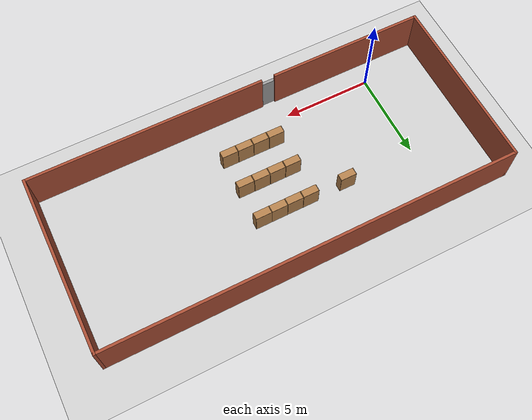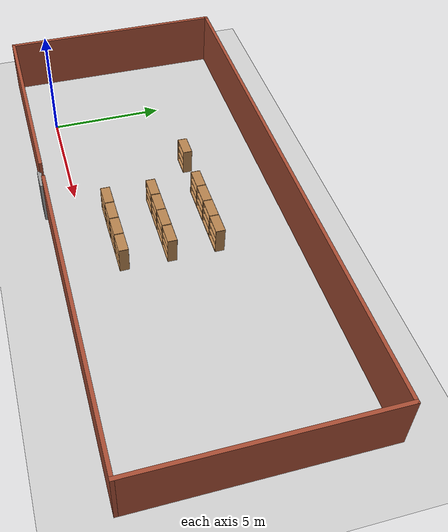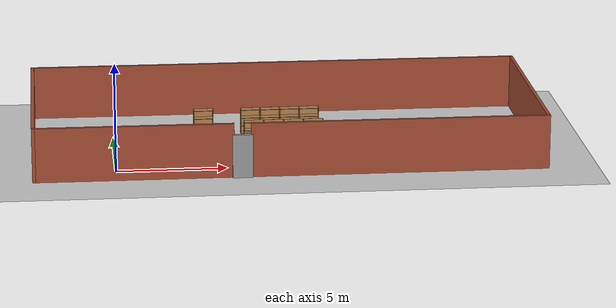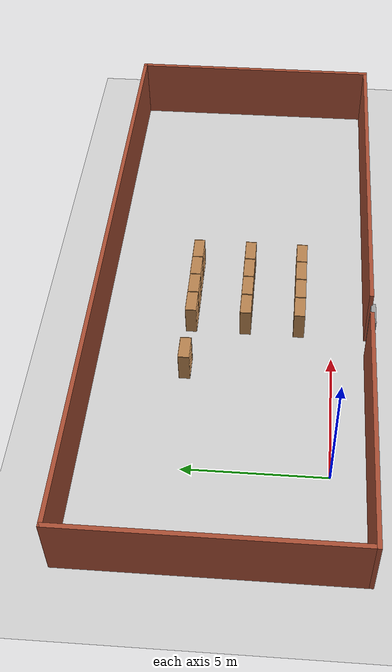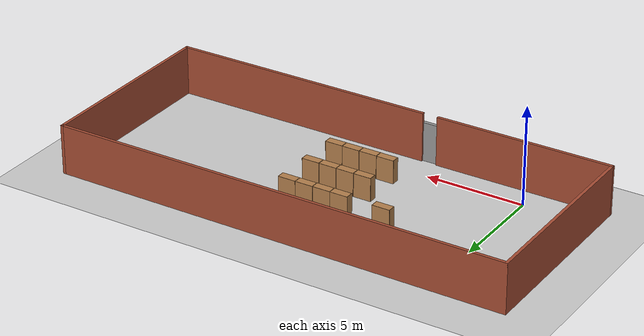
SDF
<sdf version="1.7">
 <world name="default">
  <model name="ground_plane">
   <static>1</static>
   <link name="link">
    <collision name="collision">
     <geometry><plane><normal>0 0 1</normal><size>100 100</size></plane></geometry>
     <surface>
      <contact><collide_bitmask>65535</collide_bitmask></contact>
      <friction><ode><mu>100</mu><mu2>50</mu2></ode></friction>
     </surface>
    </collision>
    <visual name="visual">
     <cast_shadows>0</cast_shadows>
     <geometry><plane><normal>0 0 1</normal><size>100 100</size></plane></geometry>
     <material>
      <script><uri>file://media/materials/scripts/gazebo.material</uri><name>Gazebo/Grey</name></script>
     </material>
    </visual>
   </link>
  </model>
  <model name="bookshelf_10">
   <static>1</static>
   <link name="link">
    <inertial><mass>1</mass></inertial>
    <collision name="back">
     <pose>0 0.005 0.6 0 -0 0</pose>
     <geometry><box><size>0.9 0.01 1.2</size></box></geometry>
    </collision>
    <visual name="visual1">
     <pose>0 0.005 0.6 0 -0 0</pose>
     <geometry><box><size>0.9 0.01 1.2</size></box></geometry>
     <material>
      <script><uri>file://media/materials/scripts/gazebo.material</uri><name>Gazebo/Wood</name></script>
     </material>
    </visual>
    <collision name="left_side">
     <pose>0.45 -0.195 0.6 0 -0 0</pose>
     <geometry><box><size>0.02 0.4 1.2</size></box></geometry>
    </collision>
    <visual name="visual2">
     <pose>0.45 -0.195 0.6 0 -0 0</pose>
     <geometry><box><size>0.02 0.4 1.2</size></box></geometry>
     <material>
      <script><uri>file://media/materials/scripts/gazebo.material</uri><name>Gazebo/Wood</name></script>
     </material>
    </visual>
    <collision name="right_side">
     <pose>-0.45 -0.195 0.6 0 -0 0</pose>
     <geometry><box><size>0.02 0.4 1.2</size></box></geometry>
    </collision>
    <visual name="visual3">
     <pose>-0.45 -0.195 0.6 0 -0 0</pose>
     <geometry><box><size>0.02 0.4 1.2</size></box></geometry>
     <material>
      <script><uri>file://media/materials/scripts/gazebo.material</uri><name>Gazebo/Wood</name></script>
     </material>
    </visual>
    <collision name="bottom">
     <pose>0 -0.195 0.03 0 -0 0</pose>
     <geometry><box><size>0.88 0.4 0.06</size></box></geometry>
    </collision>
    <visual name="visual4">
     <pose>0 -0.195 0.03 0 -0 0</pose>
     <geometry><box><size>0.88 0.4 0.06</size></box></geometry>
     <material>
      <script><uri>file://media/materials/scripts/gazebo.material</uri><name>Gazebo/Wood</name></script>
     </material>
    </visual>
    <collision name="top">
     <pose>0 -0.195 1.19 0 -0 0</pose>
     <geometry><box><size>0.88 0.4 0.02</size></box></geometry>
    </collision>
    <visual name="visual5">
     <pose>0 -0.195 1.19 0 -0 0</pose>
     <geometry><box><size>0.88 0.4 0.02</size></box></geometry>
     <material>
      <script><uri>file://media/materials/scripts/gazebo.material</uri><name>Gazebo/Wood</name></script>
     </material>
    </visual>
    <collision name="low_shelf">
     <pose>0 -0.195 0.43 0 -0 0</pose>
     <geometry><box><size>0.88 0.4 0.02</size></box></geometry>
    </collision>
    <visual name="visual6">
     <pose>0 -0.195 0.43 0 -0 0</pose>
     <geometry><box><size>0.88 0.4 0.02</size></box></geometry>
     <material>
      <script><uri>file://media/materials/scripts/gazebo.material</uri><name>Gazebo/Wood</name></script>
     </material>
    </visual>
    <collision name="high_shelf">
     <pose>0 -0.195 0.8 0 -0 0</pose>
     <geometry><box><size>0.88 0.4 0.02</size></box></geometry>
    </collision>
    <visual name="visual7">
     <pose>0 -0.195 0.8 0 -0 0</pose>
     <geometry><box><size>0.88 0.4 0.02</size></box></geometry>
     <material>
      <script><uri>file://media/materials/scripts/gazebo.material</uri><name>Gazebo/Wood</name></script>
     </material>
    </visual>
   </link>
   <pose>4.24822 5.43713 0 0 -0 0</pose>
  </model>
  <model name="bookshelf_11">
   <static>1</static>
   <link name="link">
    <inertial><mass>1</mass></inertial>
    <collision name="back">
     <pose>0 0.005 0.6 0 -0 0</pose>
     <geometry><box><size>0.9 0.01 1.2</size></box></geometry>
    </collision>
    <visual name="visual1">
     <pose>0 0.005 0.6 0 -0 0</pose>
     <geometry><box><size>0.9 0.01 1.2</size></box></geometry>
     <material>
      <script><uri>file://media/materials/scripts/gazebo.material</uri><name>Gazebo/Wood</name></script>
     </material>
    </visual>
    <collision name="left_side">
     <pose>0.45 -0.195 0.6 0 -0 0</pose>
     <geometry><box><size>0.02 0.4 1.2</size></box></geometry>
    </collision>
    <visual name="visual2">
     <pose>0.45 -0.195 0.6 0 -0 0</pose>
     <geometry><box><size>0.02 0.4 1.2</size></box></geometry>
     <material>
      <script><uri>file://media/materials/scripts/gazebo.material</uri><name>Gazebo/Wood</name></script>
     </material>
    </visual>
    <collision name="right_side">
     <pose>-0.45 -0.195 0.6 0 -0 0</pose>
     <geometry><box><size>0.02 0.4 1.2</size></box></geometry>
    </collision>
    <visual name="visual3">
     <pose>-0.45 -0.195 0.6 0 -0 0</pose>
     <geometry><box><size>0.02 0.4 1.2</size></box></geometry>
     <material>
      <script><uri>file://media/materials/scripts/gazebo.material</uri><name>Gazebo/Wood</name></script>
     </material>
    </visual>
    <collision name="bottom">
     <pose>0 -0.195 0.03 0 -0 0</pose>
     <geometry><box><size>0.88 0.4 0.06</size></box></geometry>
    </collision>
    <visual name="visual4">
     <pose>0 -0.195 0.03 0 -0 0</pose>
     <geometry><box><size>0.88 0.4 0.06</size></box></geometry>
     <material>
      <script><uri>file://media/materials/scripts/gazebo.material</uri><name>Gazebo/Wood</name></script>
     </material>
    </visual>
    <collision name="top">
     <pose>0 -0.195 1.19 0 -0 0</pose>
     <geometry><box><size>0.88 0.4 0.02</size></box></geometry>
    </collision>
    <visual name="visual5">
     <pose>0 -0.195 1.19 0 -0 0</pose>
     <geometry><box><size>0.88 0.4 0.02</size></box></geometry>
     <material>
      <script><uri>file://media/materials/scripts/gazebo.material</uri><name>Gazebo/Wood</name></script>
     </material>
    </visual>
    <collision name="low_shelf">
     <pose>0 -0.195 0.43 0 -0 0</pose>
     <geometry><box><size>0.88 0.4 0.02</size></box></geometry>
    </collision>
    <visual name="visual6">
     <pose>0 -0.195 0.43 0 -0 0</pose>
     <geometry><box><size>0.88 0.4 0.02</size></box></geometry>
     <material>
      <script><uri>file://media/materials/scripts/gazebo.material</uri><name>Gazebo/Wood</name></script>
     </material>
    </visual>
    <collision name="high_shelf">
     <pose>0 -0.195 0.8 0 -0 0</pose>
     <geometry><box><size>0.88 0.4 0.02</size></box></geometry>
    </collision>
    <visual name="visual7">
     <pose>0 -0.195 0.8 0 -0 0</pose>
     <geometry><box><size>0.88 0.4 0.02</size></box></geometry>
     <material>
      <script><uri>file://media/materials/scripts/gazebo.material</uri><name>Gazebo/Wood</name></script>
     </material>
    </visual>
   </link>
   <pose>6.45841 5.41018 0 0 -0 0</pose>
  </model>
  <model name="bookshelf_12">
   <static>1</static>
   <link name="link">
    <inertial><mass>1</mass></inertial>
    <collision name="back">
     <pose>0 0.005 0.6 0 -0 0</pose>
     <geometry><box><size>0.9 0.01 1.2</size></box></geometry>
    </collision>
    <visual name="visual1">
     <pose>0 0.005 0.6 0 -0 0</pose>
     <geometry><box><size>0.9 0.01 1.2</size></box></geometry>
     <material>
      <script><uri>file://media/materials/scripts/gazebo.material</uri><name>Gazebo/Wood</name></script>
     </material>
    </visual>
    <collision name="left_side">
     <pose>0.45 -0.195 0.6 0 -0 0</pose>
     <geometry><box><size>0.02 0.4 1.2</size></box></geometry>
    </collision>
    <visual name="visual2">
     <pose>0.45 -0.195 0.6 0 -0 0</pose>
     <geometry><box><size>0.02 0.4 1.2</size></box></geometry>
     <material>
      <script><uri>file://media/materials/scripts/gazebo.material</uri><name>Gazebo/Wood</name></script>
     </material>
    </visual>
    <collision name="right_side">
     <pose>-0.45 -0.195 0.6 0 -0 0</pose>
     <geometry><box><size>0.02 0.4 1.2</size></box></geometry>
    </collision>
    <visual name="visual3">
     <pose>-0.45 -0.195 0.6 0 -0 0</pose>
     <geometry><box><size>0.02 0.4 1.2</size></box></geometry>
     <material>
      <script><uri>file://media/materials/scripts/gazebo.material</uri><name>Gazebo/Wood</name></script>
     </material>
    </visual>
    <collision name="bottom">
     <pose>0 -0.195 0.03 0 -0 0</pose>
     <geometry><box><size>0.88 0.4 0.06</size></box></geometry>
    </collision>
    <visual name="visual4">
     <pose>0 -0.195 0.03 0 -0 0</pose>
     <geometry><box><size>0.88 0.4 0.06</size></box></geometry>
     <material>
      <script><uri>file://media/materials/scripts/gazebo.material</uri><name>Gazebo/Wood</name></script>
     </material>
    </visual>
    <collision name="top">
     <pose>0 -0.195 1.19 0 -0 0</pose>
     <geometry><box><size>0.88 0.4 0.02</size></box></geometry>
    </collision>
    <visual name="visual5">
     <pose>0 -0.195 1.19 0 -0 0</pose>
     <geometry><box><size>0.88 0.4 0.02</size></box></geometry>
     <material>
      <script><uri>file://media/materials/scripts/gazebo.material</uri><name>Gazebo/Wood</name></script>
     </material>
    </visual>
    <collision name="low_shelf">
     <pose>0 -0.195 0.43 0 -0 0</pose>
     <geometry><box><size>0.88 0.4 0.02</size></box></geometry>
    </collision>
    <visual name="visual6">
     <pose>0 -0.195 0.43 0 -0 0</pose>
     <geometry><box><size>0.88 0.4 0.02</size></box></geometry>
     <material>
      <script><uri>file://media/materials/scripts/gazebo.material</uri><name>Gazebo/Wood</name></script>
     </material>
    </visual>
    <collision name="high_shelf">
     <pose>0 -0.195 0.8 0 -0 0</pose>
     <geometry><box><size>0.88 0.4 0.02</size></box></geometry>
    </collision>
    <visual name="visual7">
     <pose>0 -0.195 0.8 0 -0 0</pose>
     <geometry><box><size>0.88 0.4 0.02</size></box></geometry>
     <material>
      <script><uri>file://media/materials/scripts/gazebo.material</uri><name>Gazebo/Wood</name></script>
     </material>
    </visual>
   </link>
   <pose>6.46154 3.39615 0 0 -0 0</pose>
  </model>
  <model name="bookshelf_13">
   <static>1</static>
   <link name="link">
    <inertial><mass>1</mass></inertial>
    <collision name="back">
     <pose>0 0.005 0.6 0 -0 0</pose>
     <geometry><box><size>0.9 0.01 1.2</size></box></geometry>
    </collision>
    <visual name="visual1">
     <pose>0 0.005 0.6 0 -0 0</pose>
     <geometry><box><size>0.9 0.01 1.2</size></box></geometry>
     <material>
      <script><uri>file://media/materials/scripts/gazebo.material</uri><name>Gazebo/Wood</name></script>
     </material>
    </visual>
    <collision name="left_side">
     <pose>0.45 -0.195 0.6 0 -0 0</pose>
     <geometry><box><size>0.02 0.4 1.2</size></box></geometry>
    </collision>
    <visual name="visual2">
     <pose>0.45 -0.195 0.6 0 -0 0</pose>
     <geometry><box><size>0.02 0.4 1.2</size></box></geometry>
     <material>
      <script><uri>file://media/materials/scripts/gazebo.material</uri><name>Gazebo/Wood</name></script>
     </material>
    </visual>
    <collision name="right_side">
     <pose>-0.45 -0.195 0.6 0 -0 0</pose>
     <geometry><box><size>0.02 0.4 1.2</size></box></geometry>
    </collision>
    <visual name="visual3">
     <pose>-0.45 -0.195 0.6 0 -0 0</pose>
     <geometry><box><size>0.02 0.4 1.2</size></box></geometry>
     <material>
      <script><uri>file://media/materials/scripts/gazebo.material</uri><name>Gazebo/Wood</name></script>
     </material>
    </visual>
    <collision name="bottom">
     <pose>0 -0.195 0.03 0 -0 0</pose>
     <geometry><box><size>0.88 0.4 0.06</size></box></geometry>
    </collision>
    <visual name="visual4">
     <pose>0 -0.195 0.03 0 -0 0</pose>
     <geometry><box><size>0.88 0.4 0.06</size></box></geometry>
     <material>
      <script><uri>file://media/materials/scripts/gazebo.material</uri><name>Gazebo/Wood</name></script>
     </material>
    </visual>
    <collision name="top">
     <pose>0 -0.195 1.19 0 -0 0</pose>
     <geometry><box><size>0.88 0.4 0.02</size></box></geometry>
    </collision>
    <visual name="visual5">
     <pose>0 -0.195 1.19 0 -0 0</pose>
     <geometry><box><size>0.88 0.4 0.02</size></box></geometry>
     <material>
      <script><uri>file://media/materials/scripts/gazebo.material</uri><name>Gazebo/Wood</name></script>
     </material>
    </visual>
    <collision name="low_shelf">
     <pose>0 -0.195 0.43 0 -0 0</pose>
     <geometry><box><size>0.88 0.4 0.02</size></box></geometry>
    </collision>
    <visual name="visual6">
     <pose>0 -0.195 0.43 0 -0 0</pose>
     <geometry><box><size>0.88 0.4 0.02</size></box></geometry>
     <material>
      <script><uri>file://media/materials/scripts/gazebo.material</uri><name>Gazebo/Wood</name></script>
     </material>
    </visual>
    <collision name="high_shelf">
     <pose>0 -0.195 0.8 0 -0 0</pose>
     <geometry><box><size>0.88 0.4 0.02</size></box></geometry>
    </collision>
    <visual name="visual7">
     <pose>0 -0.195 0.8 0 -0 0</pose>
     <geometry><box><size>0.88 0.4 0.02</size></box></geometry>
     <material>
      <script><uri>file://media/materials/scripts/gazebo.material</uri><name>Gazebo/Wood</name></script>
     </material>
    </visual>
   </link>
   <pose>6.44421 1.41365 0 0 -0 0</pose>
  </model>
  <model name="bookshelf_14">
   <static>1</static>
   <link name="link">
    <inertial><mass>1</mass></inertial>
    <collision name="back">
     <pose>0 0.005 0.6 0 -0 0</pose>
     <geometry><box><size>0.9 0.01 1.2</size></box></geometry>
    </collision>
    <visual name="visual1">
     <pose>0 0.005 0.6 0 -0 0</pose>
     <geometry><box><size>0.9 0.01 1.2</size></box></geometry>
     <material>
      <script><uri>file://media/materials/scripts/gazebo.material</uri><name>Gazebo/Wood</name></script>
     </material>
    </visual>
    <collision name="left_side">
     <pose>0.45 -0.195 0.6 0 -0 0</pose>
     <geometry><box><size>0.02 0.4 1.2</size></box></geometry>
    </collision>
    <visual name="visual2">
     <pose>0.45 -0.195 0.6 0 -0 0</pose>
     <geometry><box><size>0.02 0.4 1.2</size></box></geometry>
     <material>
      <script><uri>file://media/materials/scripts/gazebo.material</uri><name>Gazebo/Wood</name></script>
     </material>
    </visual>
    <collision name="right_side">
     <pose>-0.45 -0.195 0.6 0 -0 0</pose>
     <geometry><box><size>0.02 0.4 1.2</size></box></geometry>
    </collision>
    <visual name="visual3">
     <pose>-0.45 -0.195 0.6 0 -0 0</pose>
     <geometry><box><size>0.02 0.4 1.2</size></box></geometry>
     <material>
      <script><uri>file://media/materials/scripts/gazebo.material</uri><name>Gazebo/Wood</name></script>
     </material>
    </visual>
    <collision name="bottom">
     <pose>0 -0.195 0.03 0 -0 0</pose>
     <geometry><box><size>0.88 0.4 0.06</size></box></geometry>
    </collision>
    <visual name="visual4">
     <pose>0 -0.195 0.03 0 -0 0</pose>
     <geometry><box><size>0.88 0.4 0.06</size></box></geometry>
     <material>
      <script><uri>file://media/materials/scripts/gazebo.material</uri><name>Gazebo/Wood</name></script>
     </material>
    </visual>
    <collision name="top">
     <pose>0 -0.195 1.19 0 -0 0</pose>
     <geometry><box><size>0.88 0.4 0.02</size></box></geometry>
    </collision>
    <visual name="visual5">
     <pose>0 -0.195 1.19 0 -0 0</pose>
     <geometry><box><size>0.88 0.4 0.02</size></box></geometry>
     <material>
      <script><uri>file://media/materials/scripts/gazebo.material</uri><name>Gazebo/Wood</name></script>
     </material>
    </visual>
    <collision name="low_shelf">
     <pose>0 -0.195 0.43 0 -0 0</pose>
     <geometry><box><size>0.88 0.4 0.02</size></box></geometry>
    </collision>
    <visual name="visual6">
     <pose>0 -0.195 0.43 0 -0 0</pose>
     <geometry><box><size>0.88 0.4 0.02</size></box></geometry>
     <material>
      <script><uri>file://media/materials/scripts/gazebo.material</uri><name>Gazebo/Wood</name></script>
     </material>
    </visual>
    <collision name="high_shelf">
     <pose>0 -0.195 0.8 0 -0 0</pose>
     <geometry><box><size>0.88 0.4 0.02</size></box></geometry>
    </collision>
    <visual name="visual7">
     <pose>0 -0.195 0.8 0 -0 0</pose>
     <geometry><box><size>0.88 0.4 0.02</size></box></geometry>
     <material>
      <script><uri>file://media/materials/scripts/gazebo.material</uri><name>Gazebo/Wood</name></script>
     </material>
    </visual>
   </link>
   <pose>7.38076 5.40908 0 0 -0 0</pose>
  </model>
  <model name="bookshelf_15">
   <static>1</static>
   <link name="link">
    <inertial><mass>1</mass></inertial>
    <collision name="back">
     <pose>0 0.005 0.6 0 -0 0</pose>
     <geometry><box><size>0.9 0.01 1.2</size></box></geometry>
    </collision>
    <visual name="visual1">
     <pose>0 0.005 0.6 0 -0 0</pose>
     <geometry><box><size>0.9 0.01 1.2</size></box></geometry>
     <material>
      <script><uri>file://media/materials/scripts/gazebo.material</uri><name>Gazebo/Wood</name></script>
     </material>
    </visual>
    <collision name="left_side">
     <pose>0.45 -0.195 0.6 0 -0 0</pose>
     <geometry><box><size>0.02 0.4 1.2</size></box></geometry>
    </collision>
    <visual name="visual2">
     <pose>0.45 -0.195 0.6 0 -0 0</pose>
     <geometry><box><size>0.02 0.4 1.2</size></box></geometry>
     <material>
      <script><uri>file://media/materials/scripts/gazebo.material</uri><name>Gazebo/Wood</name></script>
     </material>
    </visual>
    <collision name="right_side">
     <pose>-0.45 -0.195 0.6 0 -0 0</pose>
     <geometry><box><size>0.02 0.4 1.2</size></box></geometry>
    </collision>
    <visual name="visual3">
     <pose>-0.45 -0.195 0.6 0 -0 0</pose>
     <geometry><box><size>0.02 0.4 1.2</size></box></geometry>
     <material>
      <script><uri>file://media/materials/scripts/gazebo.material</uri><name>Gazebo/Wood</name></script>
     </material>
    </visual>
    <collision name="bottom">
     <pose>0 -0.195 0.03 0 -0 0</pose>
     <geometry><box><size>0.88 0.4 0.06</size></box></geometry>
    </collision>
    <visual name="visual4">
     <pose>0 -0.195 0.03 0 -0 0</pose>
     <geometry><box><size>0.88 0.4 0.06</size></box></geometry>
     <material>
      <script><uri>file://media/materials/scripts/gazebo.material</uri><name>Gazebo/Wood</name></script>
     </material>
    </visual>
    <collision name="top">
     <pose>0 -0.195 1.19 0 -0 0</pose>
     <geometry><box><size>0.88 0.4 0.02</size></box></geometry>
    </collision>
    <visual name="visual5">
     <pose>0 -0.195 1.19 0 -0 0</pose>
     <geometry><box><size>0.88 0.4 0.02</size></box></geometry>
     <material>
      <script><uri>file://media/materials/scripts/gazebo.material</uri><name>Gazebo/Wood</name></script>
     </material>
    </visual>
    <collision name="low_shelf">
     <pose>0 -0.195 0.43 0 -0 0</pose>
     <geometry><box><size>0.88 0.4 0.02</size></box></geometry>
    </collision>
    <visual name="visual6">
     <pose>0 -0.195 0.43 0 -0 0</pose>
     <geometry><box><size>0.88 0.4 0.02</size></box></geometry>
     <material>
      <script><uri>file://media/materials/scripts/gazebo.material</uri><name>Gazebo/Wood</name></script>
     </material>
    </visual>
    <collision name="high_shelf">
     <pose>0 -0.195 0.8 0 -0 0</pose>
     <geometry><box><size>0.88 0.4 0.02</size></box></geometry>
    </collision>
    <visual name="visual7">
     <pose>0 -0.195 0.8 0 -0 0</pose>
     <geometry><box><size>0.88 0.4 0.02</size></box></geometry>
     <material>
      <script><uri>file://media/materials/scripts/gazebo.material</uri><name>Gazebo/Wood</name></script>
     </material>
    </visual>
   </link>
   <pose>7.38849 3.39527 0 0 -0 0</pose>
  </model>
  <model name="bookshelf_16">
   <static>1</static>
   <link name="link">
    <inertial><mass>1</mass></inertial>
    <collision name="back">
     <pose>0 0.005 0.6 0 -0 0</pose>
     <geometry><box><size>0.9 0.01 1.2</size></box></geometry>
    </collision>
    <visual name="visual1">
     <pose>0 0.005 0.6 0 -0 0</pose>
     <geometry><box><size>0.9 0.01 1.2</size></box></geometry>
     <material>
      <script><uri>file://media/materials/scripts/gazebo.material</uri><name>Gazebo/Wood</name></script>
     </material>
    </visual>
    <collision name="left_side">
     <pose>0.45 -0.195 0.6 0 -0 0</pose>
     <geometry><box><size>0.02 0.4 1.2</size></box></geometry>
    </collision>
    <visual name="visual2">
     <pose>0.45 -0.195 0.6 0 -0 0</pose>
     <geometry><box><size>0.02 0.4 1.2</size></box></geometry>
     <material>
      <script><uri>file://media/materials/scripts/gazebo.material</uri><name>Gazebo/Wood</name></script>
     </material>
    </visual>
    <collision name="right_side">
     <pose>-0.45 -0.195 0.6 0 -0 0</pose>
     <geometry><box><size>0.02 0.4 1.2</size></box></geometry>
    </collision>
    <visual name="visual3">
     <pose>-0.45 -0.195 0.6 0 -0 0</pose>
     <geometry><box><size>0.02 0.4 1.2</size></box></geometry>
     <material>
      <script><uri>file://media/materials/scripts/gazebo.material</uri><name>Gazebo/Wood</name></script>
     </material>
    </visual>
    <collision name="bottom">
     <pose>0 -0.195 0.03 0 -0 0</pose>
     <geometry><box><size>0.88 0.4 0.06</size></box></geometry>
    </collision>
    <visual name="visual4">
     <pose>0 -0.195 0.03 0 -0 0</pose>
     <geometry><box><size>0.88 0.4 0.06</size></box></geometry>
     <material>
      <script><uri>file://media/materials/scripts/gazebo.material</uri><name>Gazebo/Wood</name></script>
     </material>
    </visual>
    <collision name="top">
     <pose>0 -0.195 1.19 0 -0 0</pose>
     <geometry><box><size>0.88 0.4 0.02</size></box></geometry>
    </collision>
    <visual name="visual5">
     <pose>0 -0.195 1.19 0 -0 0</pose>
     <geometry><box><size>0.88 0.4 0.02</size></box></geometry>
     <material>
      <script><uri>file://media/materials/scripts/gazebo.material</uri><name>Gazebo/Wood</name></script>
     </material>
    </visual>
    <collision name="low_shelf">
     <pose>0 -0.195 0.43 0 -0 0</pose>
     <geometry><box><size>0.88 0.4 0.02</size></box></geometry>
    </collision>
    <visual name="visual6">
     <pose>0 -0.195 0.43 0 -0 0</pose>
     <geometry><box><size>0.88 0.4 0.02</size></box></geometry>
     <material>
      <script><uri>file://media/materials/scripts/gazebo.material</uri><name>Gazebo/Wood</name></script>
     </material>
    </visual>
    <collision name="high_shelf">
     <pose>0 -0.195 0.8 0 -0 0</pose>
     <geometry><box><size>0.88 0.4 0.02</size></box></geometry>
    </collision>
    <visual name="visual7">
     <pose>0 -0.195 0.8 0 -0 0</pose>
     <geometry><box><size>0.88 0.4 0.02</size></box></geometry>
     <material>
      <script><uri>file://media/materials/scripts/gazebo.material</uri><name>Gazebo/Wood</name></script>
     </material>
    </visual>
   </link>
   <pose>7.36943 1.40695 0 0 -0 0</pose>
  </model>
  <model name="bookshelf_17">
   <static>1</static>
   <link name="link">
    <inertial><mass>1</mass></inertial>
    <collision name="back">
     <pose>0 0.005 0.6 0 -0 0</pose>
     <geometry><box><size>0.9 0.01 1.2</size></box></geometry>
    </collision>
    <visual name="visual1">
     <pose>0 0.005 0.6 0 -0 0</pose>
     <geometry><box><size>0.9 0.01 1.2</size></box></geometry>
     <material>
      <script><uri>file://media/materials/scripts/gazebo.material</uri><name>Gazebo/Wood</name></script>
     </material>
    </visual>
    <collision name="left_side">
     <pose>0.45 -0.195 0.6 0 -0 0</pose>
     <geometry><box><size>0.02 0.4 1.2</size></box></geometry>
    </collision>
    <visual name="visual2">
     <pose>0.45 -0.195 0.6 0 -0 0</pose>
     <geometry><box><size>0.02 0.4 1.2</size></box></geometry>
     <material>
      <script><uri>file://media/materials/scripts/gazebo.material</uri><name>Gazebo/Wood</name></script>
     </material>
    </visual>
    <collision name="right_side">
     <pose>-0.45 -0.195 0.6 0 -0 0</pose>
     <geometry><box><size>0.02 0.4 1.2</size></box></geometry>
    </collision>
    <visual name="visual3">
     <pose>-0.45 -0.195 0.6 0 -0 0</pose>
     <geometry><box><size>0.02 0.4 1.2</size></box></geometry>
     <material>
      <script><uri>file://media/materials/scripts/gazebo.material</uri><name>Gazebo/Wood</name></script>
     </material>
    </visual>
    <collision name="bottom">
     <pose>0 -0.195 0.03 0 -0 0</pose>
     <geometry><box><size>0.88 0.4 0.06</size></box></geometry>
    </collision>
    <visual name="visual4">
     <pose>0 -0.195 0.03 0 -0 0</pose>
     <geometry><box><size>0.88 0.4 0.06</size></box></geometry>
     <material>
      <script><uri>file://media/materials/scripts/gazebo.material</uri><name>Gazebo/Wood</name></script>
     </material>
    </visual>
    <collision name="top">
     <pose>0 -0.195 1.19 0 -0 0</pose>
     <geometry><box><size>0.88 0.4 0.02</size></box></geometry>
    </collision>
    <visual name="visual5">
     <pose>0 -0.195 1.19 0 -0 0</pose>
     <geometry><box><size>0.88 0.4 0.02</size></box></geometry>
     <material>
      <script><uri>file://media/materials/scripts/gazebo.material</uri><name>Gazebo/Wood</name></script>
     </material>
    </visual>
    <collision name="low_shelf">
     <pose>0 -0.195 0.43 0 -0 0</pose>
     <geometry><box><size>0.88 0.4 0.02</size></box></geometry>
    </collision>
    <visual name="visual6">
     <pose>0 -0.195 0.43 0 -0 0</pose>
     <geometry><box><size>0.88 0.4 0.02</size></box></geometry>
     <material>
      <script><uri>file://media/materials/scripts/gazebo.material</uri><name>Gazebo/Wood</name></script>
     </material>
    </visual>
    <collision name="high_shelf">
     <pose>0 -0.195 0.8 0 -0 0</pose>
     <geometry><box><size>0.88 0.4 0.02</size></box></geometry>
    </collision>
    <visual name="visual7">
     <pose>0 -0.195 0.8 0 -0 0</pose>
     <geometry><box><size>0.88 0.4 0.02</size></box></geometry>
     <material>
      <script><uri>file://media/materials/scripts/gazebo.material</uri><name>Gazebo/Wood</name></script>
     </material>
    </visual>
   </link>
   <pose>8.2985 5.41345 0 0 -0 0</pose>
  </model>
  <model name="bookshelf_18">
   <static>1</static>
   <link name="link">
    <inertial><mass>1</mass></inertial>
    <collision name="back">
     <pose>0 0.005 0.6 0 -0 0</pose>
     <geometry><box><size>0.9 0.01 1.2</size></box></geometry>
    </collision>
    <visual name="visual1">
     <pose>0 0.005 0.6 0 -0 0</pose>
     <geometry><box><size>0.9 0.01 1.2</size></box></geometry>
     <material>
      <script><uri>file://media/materials/scripts/gazebo.material</uri><name>Gazebo/Wood</name></script>
     </material>
    </visual>
    <collision name="left_side">
     <pose>0.45 -0.195 0.6 0 -0 0</pose>
     <geometry><box><size>0.02 0.4 1.2</size></box></geometry>
    </collision>
    <visual name="visual2">
     <pose>0.45 -0.195 0.6 0 -0 0</pose>
     <geometry><box><size>0.02 0.4 1.2</size></box></geometry>
     <material>
      <script><uri>file://media/materials/scripts/gazebo.material</uri><name>Gazebo/Wood</name></script>
     </material>
    </visual>
    <collision name="right_side">
     <pose>-0.45 -0.195 0.6 0 -0 0</pose>
     <geometry><box><size>0.02 0.4 1.2</size></box></geometry>
    </collision>
    <visual name="visual3">
     <pose>-0.45 -0.195 0.6 0 -0 0</pose>
     <geometry><box><size>0.02 0.4 1.2</size></box></geometry>
     <material>
      <script><uri>file://media/materials/scripts/gazebo.material</uri><name>Gazebo/Wood</name></script>
     </material>
    </visual>
    <collision name="bottom">
     <pose>0 -0.195 0.03 0 -0 0</pose>
     <geometry><box><size>0.88 0.4 0.06</size></box></geometry>
    </collision>
    <visual name="visual4">
     <pose>0 -0.195 0.03 0 -0 0</pose>
     <geometry><box><size>0.88 0.4 0.06</size></box></geometry>
     <material>
      <script><uri>file://media/materials/scripts/gazebo.material</uri><name>Gazebo/Wood</name></script>
     </material>
    </visual>
    <collision name="top">
     <pose>0 -0.195 1.19 0 -0 0</pose>
     <geometry><box><size>0.88 0.4 0.02</size></box></geometry>
    </collision>
    <visual name="visual5">
     <pose>0 -0.195 1.19 0 -0 0</pose>
     <geometry><box><size>0.88 0.4 0.02</size></box></geometry>
     <material>
      <script><uri>file://media/materials/scripts/gazebo.material</uri><name>Gazebo/Wood</name></script>
     </material>
    </visual>
    <collision name="low_shelf">
     <pose>0 -0.195 0.43 0 -0 0</pose>
     <geometry><box><size>0.88 0.4 0.02</size></box></geometry>
    </collision>
    <visual name="visual6">
     <pose>0 -0.195 0.43 0 -0 0</pose>
     <geometry><box><size>0.88 0.4 0.02</size></box></geometry>
     <material>
      <script><uri>file://media/materials/scripts/gazebo.material</uri><name>Gazebo/Wood</name></script>
     </material>
    </visual>
    <collision name="high_shelf">
     <pose>0 -0.195 0.8 0 -0 0</pose>
     <geometry><box><size>0.88 0.4 0.02</size></box></geometry>
    </collision>
    <visual name="visual7">
     <pose>0 -0.195 0.8 0 -0 0</pose>
     <geometry><box><size>0.88 0.4 0.02</size></box></geometry>
     <material>
      <script><uri>file://media/materials/scripts/gazebo.material</uri><name>Gazebo/Wood</name></script>
     </material>
    </visual>
   </link>
   <pose>8.30885 3.39913 0 0 -0 0</pose>
  </model>
  <model name="bookshelf_19">
   <static>1</static>
   <link name="link">
    <inertial><mass>1</mass></inertial>
    <collision name="back">
     <pose>0 0.005 0.6 0 -0 0</pose>
     <geometry><box><size>0.9 0.01 1.2</size></box></geometry>
    </collision>
    <visual name="visual1">
     <pose>0 0.005 0.6 0 -0 0</pose>
     <geometry><box><size>0.9 0.01 1.2</size></box></geometry>
     <material>
      <script><uri>file://media/materials/scripts/gazebo.material</uri><name>Gazebo/Wood</name></script>
     </material>
    </visual>
    <collision name="left_side">
     <pose>0.45 -0.195 0.6 0 -0 0</pose>
     <geometry><box><size>0.02 0.4 1.2</size></box></geometry>
    </collision>
    <visual name="visual2">
     <pose>0.45 -0.195 0.6 0 -0 0</pose>
     <geometry><box><size>0.02 0.4 1.2</size></box></geometry>
     <material>
      <script><uri>file://media/materials/scripts/gazebo.material</uri><name>Gazebo/Wood</name></script>
     </material>
    </visual>
    <collision name="right_side">
     <pose>-0.45 -0.195 0.6 0 -0 0</pose>
     <geometry><box><size>0.02 0.4 1.2</size></box></geometry>
    </collision>
    <visual name="visual3">
     <pose>-0.45 -0.195 0.6 0 -0 0</pose>
     <geometry><box><size>0.02 0.4 1.2</size></box></geometry>
     <material>
      <script><uri>file://media/materials/scripts/gazebo.material</uri><name>Gazebo/Wood</name></script>
     </material>
    </visual>
    <collision name="bottom">
     <pose>0 -0.195 0.03 0 -0 0</pose>
     <geometry><box><size>0.88 0.4 0.06</size></box></geometry>
    </collision>
    <visual name="visual4">
     <pose>0 -0.195 0.03 0 -0 0</pose>
     <geometry><box><size>0.88 0.4 0.06</size></box></geometry>
     <material>
      <script><uri>file://media/materials/scripts/gazebo.material</uri><name>Gazebo/Wood</name></script>
     </material>
    </visual>
    <collision name="top">
     <pose>0 -0.195 1.19 0 -0 0</pose>
     <geometry><box><size>0.88 0.4 0.02</size></box></geometry>
    </collision>
    <visual name="visual5">
     <pose>0 -0.195 1.19 0 -0 0</pose>
     <geometry><box><size>0.88 0.4 0.02</size></box></geometry>
     <material>
      <script><uri>file://media/materials/scripts/gazebo.material</uri><name>Gazebo/Wood</name></script>
     </material>
    </visual>
    <collision name="low_shelf">
     <pose>0 -0.195 0.43 0 -0 0</pose>
     <geometry><box><size>0.88 0.4 0.02</size></box></geometry>
    </collision>
    <visual name="visual6">
     <pose>0 -0.195 0.43 0 -0 0</pose>
     <geometry><box><size>0.88 0.4 0.02</size></box></geometry>
     <material>
      <script><uri>file://media/materials/scripts/gazebo.material</uri><name>Gazebo/Wood</name></script>
     </material>
    </visual>
    <collision name="high_shelf">
     <pose>0 -0.195 0.8 0 -0 0</pose>
     <geometry><box><size>0.88 0.4 0.02</size></box></geometry>
    </collision>
    <visual name="visual7">
     <pose>0 -0.195 0.8 0 -0 0</pose>
     <geometry><box><size>0.88 0.4 0.02</size></box></geometry>
     <material>
      <script><uri>file://media/materials/scripts/gazebo.material</uri><name>Gazebo/Wood</name></script>
     </material>
    </visual>
   </link>
   <pose>8.29376 1.40915 0 0 -0 0</pose>
  </model>
  <model name="bookshelf_20">
   <static>1</static>
   <link name="link">
    <inertial><mass>1</mass></inertial>
    <collision name="back">
     <pose>0 0.005 0.6 0 -0 0</pose>
     <geometry><box><size>0.9 0.01 1.2</size></box></geometry>
    </collision>
    <visual name="visual1">
     <pose>0 0.005 0.6 0 -0 0</pose>
     <geometry><box><size>0.9 0.01 1.2</size></box></geometry>
     <material>
      <script><uri>file://media/materials/scripts/gazebo.material</uri><name>Gazebo/Wood</name></script>
     </material>
    </visual>
    <collision name="left_side">
     <pose>0.45 -0.195 0.6 0 -0 0</pose>
     <geometry><box><size>0.02 0.4 1.2</size></box></geometry>
    </collision>
    <visual name="visual2">
     <pose>0.45 -0.195 0.6 0 -0 0</pose>
     <geometry><box><size>0.02 0.4 1.2</size></box></geometry>
     <material>
      <script><uri>file://media/materials/scripts/gazebo.material</uri><name>Gazebo/Wood</name></script>
     </material>
    </visual>
    <collision name="right_side">
     <pose>-0.45 -0.195 0.6 0 -0 0</pose>
     <geometry><box><size>0.02 0.4 1.2</size></box></geometry>
    </collision>
    <visual name="visual3">
     <pose>-0.45 -0.195 0.6 0 -0 0</pose>
     <geometry><box><size>0.02 0.4 1.2</size></box></geometry>
     <material>
      <script><uri>file://media/materials/scripts/gazebo.material</uri><name>Gazebo/Wood</name></script>
     </material>
    </visual>
    <collision name="bottom">
     <pose>0 -0.195 0.03 0 -0 0</pose>
     <geometry><box><size>0.88 0.4 0.06</size></box></geometry>
    </collision>
    <visual name="visual4">
     <pose>0 -0.195 0.03 0 -0 0</pose>
     <geometry><box><size>0.88 0.4 0.06</size></box></geometry>
     <material>
      <script><uri>file://media/materials/scripts/gazebo.material</uri><name>Gazebo/Wood</name></script>
     </material>
    </visual>
    <collision name="top">
     <pose>0 -0.195 1.19 0 -0 0</pose>
     <geometry><box><size>0.88 0.4 0.02</size></box></geometry>
    </collision>
    <visual name="visual5">
     <pose>0 -0.195 1.19 0 -0 0</pose>
     <geometry><box><size>0.88 0.4 0.02</size></box></geometry>
     <material>
      <script><uri>file://media/materials/scripts/gazebo.material</uri><name>Gazebo/Wood</name></script>
     </material>
    </visual>
    <collision name="low_shelf">
     <pose>0 -0.195 0.43 0 -0 0</pose>
     <geometry><box><size>0.88 0.4 0.02</size></box></geometry>
    </collision>
    <visual name="visual6">
     <pose>0 -0.195 0.43 0 -0 0</pose>
     <geometry><box><size>0.88 0.4 0.02</size></box></geometry>
     <material>
      <script><uri>file://media/materials/scripts/gazebo.material</uri><name>Gazebo/Wood</name></script>
     </material>
    </visual>
    <collision name="high_shelf">
     <pose>0 -0.195 0.8 0 -0 0</pose>
     <geometry><box><size>0.88 0.4 0.02</size></box></geometry>
    </collision>
    <visual name="visual7">
     <pose>0 -0.195 0.8 0 -0 0</pose>
     <geometry><box><size>0.88 0.4 0.02</size></box></geometry>
     <material>
      <script><uri>file://media/materials/scripts/gazebo.material</uri><name>Gazebo/Wood</name></script>
     </material>
    </visual>
   </link>
   <pose>9.21663 5.41432 0 0 -0 0</pose>
  </model>
  <model name="bookshelf_21">
   <static>1</static>
   <link name="link">
    <inertial><mass>1</mass></inertial>
    <collision name="back">
     <pose>0 0.005 0.6 0 -0 0</pose>
     <geometry><box><size>0.9 0.01 1.2</size></box></geometry>
    </collision>
    <visual name="visual1">
     <pose>0 0.005 0.6 0 -0 0</pose>
     <geometry><box><size>0.9 0.01 1.2</size></box></geometry>
     <material>
      <script><uri>file://media/materials/scripts/gazebo.material</uri><name>Gazebo/Wood</name></script>
     </material>
    </visual>
    <collision name="left_side">
     <pose>0.45 -0.195 0.6 0 -0 0</pose>
     <geometry><box><size>0.02 0.4 1.2</size></box></geometry>
    </collision>
    <visual name="visual2">
     <pose>0.45 -0.195 0.6 0 -0 0</pose>
     <geometry><box><size>0.02 0.4 1.2</size></box></geometry>
     <material>
      <script><uri>file://media/materials/scripts/gazebo.material</uri><name>Gazebo/Wood</name></script>
     </material>
    </visual>
    <collision name="right_side">
     <pose>-0.45 -0.195 0.6 0 -0 0</pose>
     <geometry><box><size>0.02 0.4 1.2</size></box></geometry>
    </collision>
    <visual name="visual3">
     <pose>-0.45 -0.195 0.6 0 -0 0</pose>
     <geometry><box><size>0.02 0.4 1.2</size></box></geometry>
     <material>
      <script><uri>file://media/materials/scripts/gazebo.material</uri><name>Gazebo/Wood</name></script>
     </material>
    </visual>
    <collision name="bottom">
     <pose>0 -0.195 0.03 0 -0 0</pose>
     <geometry><box><size>0.88 0.4 0.06</size></box></geometry>
    </collision>
    <visual name="visual4">
     <pose>0 -0.195 0.03 0 -0 0</pose>
     <geometry><box><size>0.88 0.4 0.06</size></box></geometry>
     <material>
      <script><uri>file://media/materials/scripts/gazebo.material</uri><name>Gazebo/Wood</name></script>
     </material>
    </visual>
    <collision name="top">
     <pose>0 -0.195 1.19 0 -0 0</pose>
     <geometry><box><size>0.88 0.4 0.02</size></box></geometry>
    </collision>
    <visual name="visual5">
     <pose>0 -0.195 1.19 0 -0 0</pose>
     <geometry><box><size>0.88 0.4 0.02</size></box></geometry>
     <material>
      <script><uri>file://media/materials/scripts/gazebo.material</uri><name>Gazebo/Wood</name></script>
     </material>
    </visual>
    <collision name="low_shelf">
     <pose>0 -0.195 0.43 0 -0 0</pose>
     <geometry><box><size>0.88 0.4 0.02</size></box></geometry>
    </collision>
    <visual name="visual6">
     <pose>0 -0.195 0.43 0 -0 0</pose>
     <geometry><box><size>0.88 0.4 0.02</size></box></geometry>
     <material>
      <script><uri>file://media/materials/scripts/gazebo.material</uri><name>Gazebo/Wood</name></script>
     </material>
    </visual>
    <collision name="high_shelf">
     <pose>0 -0.195 0.8 0 -0 0</pose>
     <geometry><box><size>0.88 0.4 0.02</size></box></geometry>
    </collision>
    <visual name="visual7">
     <pose>0 -0.195 0.8 0 -0 0</pose>
     <geometry><box><size>0.88 0.4 0.02</size></box></geometry>
     <material>
      <script><uri>file://media/materials/scripts/gazebo.material</uri><name>Gazebo/Wood</name></script>
     </material>
    </visual>
   </link>
   <pose>9.23404 3.39597 0 0 -0 0</pose>
  </model>
  <model name="bookshelf_22">
   <static>1</static>
   <link name="link">
    <inertial><mass>1</mass></inertial>
    <collision name="back">
     <pose>0 0.005 0.6 0 -0 0</pose>
     <geometry><box><size>0.9 0.01 1.2</size></box></geometry>
    </collision>
    <visual name="visual1">
     <pose>0 0.005 0.6 0 -0 0</pose>
     <geometry><box><size>0.9 0.01 1.2</size></box></geometry>
     <material>
      <script><uri>file://media/materials/scripts/gazebo.material</uri><name>Gazebo/Wood</name></script>
     </material>
    </visual>
    <collision name="left_side">
     <pose>0.45 -0.195 0.6 0 -0 0</pose>
     <geometry><box><size>0.02 0.4 1.2</size></box></geometry>
    </collision>
    <visual name="visual2">
     <pose>0.45 -0.195 0.6 0 -0 0</pose>
     <geometry><box><size>0.02 0.4 1.2</size></box></geometry>
     <material>
      <script><uri>file://media/materials/scripts/gazebo.material</uri><name>Gazebo/Wood</name></script>
     </material>
    </visual>
    <collision name="right_side">
     <pose>-0.45 -0.195 0.6 0 -0 0</pose>
     <geometry><box><size>0.02 0.4 1.2</size></box></geometry>
    </collision>
    <visual name="visual3">
     <pose>-0.45 -0.195 0.6 0 -0 0</pose>
     <geometry><box><size>0.02 0.4 1.2</size></box></geometry>
     <material>
      <script><uri>file://media/materials/scripts/gazebo.material</uri><name>Gazebo/Wood</name></script>
     </material>
    </visual>
    <collision name="bottom">
     <pose>0 -0.195 0.03 0 -0 0</pose>
     <geometry><box><size>0.88 0.4 0.06</size></box></geometry>
    </collision>
    <visual name="visual4">
     <pose>0 -0.195 0.03 0 -0 0</pose>
     <geometry><box><size>0.88 0.4 0.06</size></box></geometry>
     <material>
      <script><uri>file://media/materials/scripts/gazebo.material</uri><name>Gazebo/Wood</name></script>
     </material>
    </visual>
    <collision name="top">
     <pose>0 -0.195 1.19 0 -0 0</pose>
     <geometry><box><size>0.88 0.4 0.02</size></box></geometry>
    </collision>
    <visual name="visual5">
     <pose>0 -0.195 1.19 0 -0 0</pose>
     <geometry><box><size>0.88 0.4 0.02</size></box></geometry>
     <material>
      <script><uri>file://media/materials/scripts/gazebo.material</uri><name>Gazebo/Wood</name></script>
     </material>
    </visual>
    <collision name="low_shelf">
     <pose>0 -0.195 0.43 0 -0 0</pose>
     <geometry><box><size>0.88 0.4 0.02</size></box></geometry>
    </collision>
    <visual name="visual6">
     <pose>0 -0.195 0.43 0 -0 0</pose>
     <geometry><box><size>0.88 0.4 0.02</size></box></geometry>
     <material>
      <script><uri>file://media/materials/scripts/gazebo.material</uri><name>Gazebo/Wood</name></script>
     </material>
    </visual>
    <collision name="high_shelf">
     <pose>0 -0.195 0.8 0 -0 0</pose>
     <geometry><box><size>0.88 0.4 0.02</size></box></geometry>
    </collision>
    <visual name="visual7">
     <pose>0 -0.195 0.8 0 -0 0</pose>
     <geometry><box><size>0.88 0.4 0.02</size></box></geometry>
     <material>
      <script><uri>file://media/materials/scripts/gazebo.material</uri><name>Gazebo/Wood</name></script>
     </material>
    </visual>
   </link>
   <pose>9.2149 1.40687 0 0 -0 0</pose>
  </model>
  <model name="Untitled_0">
   <pose>7.856 3.65283 0 0 -0 0</pose>
   <link name="Door_1">
    <collision name="Door_1_Collision">
     <geometry><box><size>0.9 0.17 2</size></box></geometry>
     <pose>0 0 1 0 -0 0</pose>
    </collision>
    <visual name="Door_1_Visual">
     <pose>0 0 1 0 -0 0</pose>
     <geometry><box><size>0.9 0.17 2</size></box></geometry>
     <material>
      <script><uri>file://media/materials/scripts/gazebo.material</uri><name>Gazebo/Grey</name></script>
     </material>
    </visual>
    <pose>-2.25893 -5.02626 0 0 -0 0</pose>
   </link>
   <link name="Wall_10">
    <collision name="Wall_10_Collision">
     <geometry><box><size>10 0.15 2.5</size></box></geometry>
     <pose>0 0 1.25 0 -0 0</pose>
    </collision>
    <visual name="Wall_10_Visual">
     <pose>0 0 1.25 0 -0 0</pose>
     <geometry><box><size>10 0.15 2.5</size></box></geometry>
     <material>
      <script><uri>file://media/materials/scripts/gazebo.material</uri><name>Gazebo/Bricks</name></script>
      <ambient>1 1 1 1</ambient>
     </material>
     <meta><layer>0</layer></meta>
    </visual>
    <pose>11.55 0 0 0 -0 -1.5708</pose>
   </link>
   <link name="Wall_11">
    <collision name="Wall_11_Collision">
     <geometry><box><size>13.5 0.15 2.5</size></box></geometry>
     <pose>0 0 1.25 0 -0 0</pose>
    </collision>
    <visual name="Wall_11_Visual">
     <pose>0 0 1.25 0 -0 0</pose>
     <geometry><box><size>13.5 0.15 2.5</size></box></geometry>
     <material>
      <script><uri>file://media/materials/scripts/gazebo.material</uri><name>Gazebo/Bricks</name></script>
      <ambient>1 1 1 1</ambient>
     </material>
     <meta><layer>0</layer></meta>
    </visual>
    <pose>4.875 -4.925 0 0 -0 3.14159</pose>
   </link>
   <link name="Wall_7">
    <collision name="Wall_7_Collision">
     <geometry><box><size>9 0.15 2.5</size></box></geometry>
     <pose>0 0 1.25 0 -0 0</pose>
    </collision>
    <visual name="Wall_7_Visual">
     <pose>0 0 1.25 0 -0 0</pose>
     <geometry><box><size>9 0.15 2.5</size></box></geometry>
     <material>
      <script><uri>file://media/materials/scripts/gazebo.material</uri><name>Gazebo/Bricks</name></script>
      <ambient>1 1 1 1</ambient>
     </material>
     <meta><layer>0</layer></meta>
    </visual>
    <pose>-7.125 -4.925 0 0 -0 3.14159</pose>
   </link>
   <link name="Wall_8">
    <collision name="Wall_8_Collision">
     <geometry><box><size>10 0.15 2.5</size></box></geometry>
     <pose>0 0 1.25 0 -0 0</pose>
    </collision>
    <visual name="Wall_8_Visual">
     <pose>0 0 1.25 0 -0 0</pose>
     <geometry><box><size>10 0.15 2.5</size></box></geometry>
     <material>
      <script><uri>file://media/materials/scripts/gazebo.material</uri><name>Gazebo/Bricks</name></script>
      <ambient>1 1 1 1</ambient>
     </material>
     <meta><layer>0</layer></meta>
    </visual>
    <pose>-11.55 0 0 0 -0 1.5708</pose>
   </link>
   <link name="Wall_9">
    <collision name="Wall_9_Collision">
     <geometry><box><size>23.25 0.15 2.5</size></box></geometry>
     <pose>0 0 1.25 0 -0 0</pose>
    </collision>
    <visual name="Wall_9_Visual">
     <pose>0 0 1.25 0 -0 0</pose>
     <geometry><box><size>23.25 0.15 2.5</size></box></geometry>
     <material>
      <script><uri>file://media/materials/scripts/gazebo.material</uri><name>Gazebo/Bricks</name></script>
      <ambient>1 1 1 1</ambient>
     </material>
     <meta><layer>0</layer></meta>
    </visual>
    <pose>-0 4.925 0 0 -0 0</pose>
   </link>
   <static>1</static>
  </model>
 </world>
</sdf>
